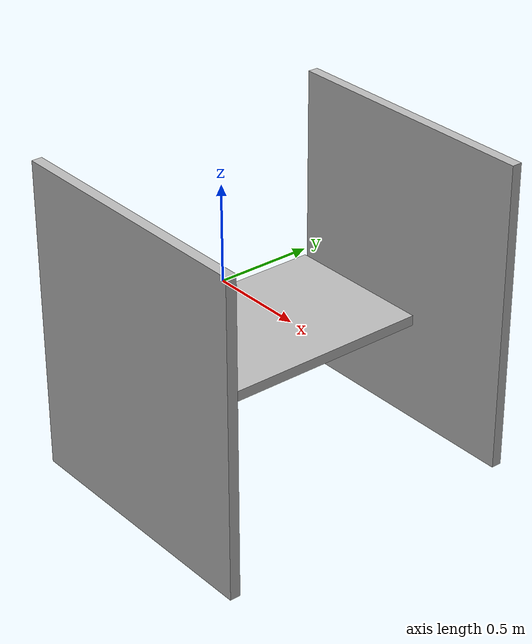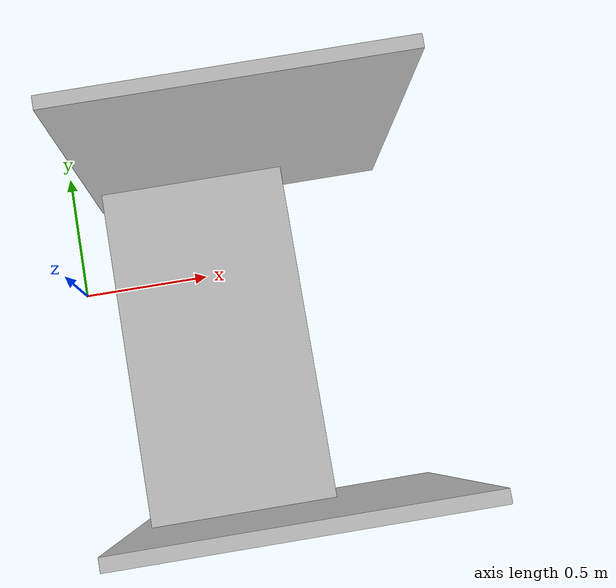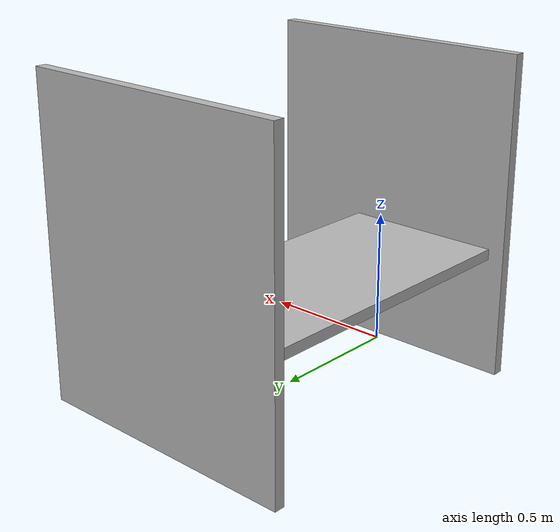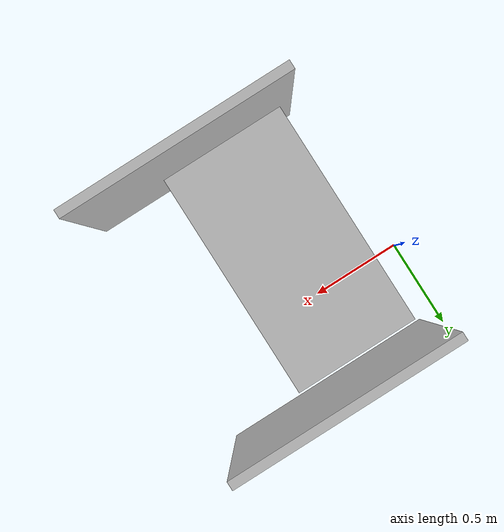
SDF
<?xml version="1.0" ?>
<sdf version="1.4">
  <!-- We use a custom world for the panda + softhand. -->
  <!-- One can change this world to his needs or use another one. -->

  <world name="default">

	<!-- box (like a robot base) -->

	<!-- box (like a table) -->
    <model name="table">
			<pose> 0.5 -0.3 0.03 0 0 0</pose>
			<static>true</static>
			<link name='linkTable'>
				<pose>0 0 0 0 0 0</pose>

				<collision name="my_collisionTable">
		 			<pose>0 0 0 0 0 0</pose>
					<geometry>
		        <box>
		          <size>0.75 1.45 0.05</size>
		        </box>
		      </geometry>
	      </collision>

				<visual name="my_visualTable">
					<geometry>
		        <box>
					<size>0.75 1.4 0.05</size>
		        </box>
		      </geometry>
	      </visual>

				<self_collide>0</self_collide>
				<gravity>1</gravity>
			</link>
    </model>

	<model name="camera1-2">
			<pose> 0.7 -1 0.2 0 0 0</pose>
			<static>true</static>
			<link name='linkTable'>
				<pose>0 0 0 0 0 0</pose>

				<collision name="my_collisionTable">
		 			<pose>0 0 0 0 0 0</pose>
					<geometry>
		        <box>
		          <size>1.3 0.05 1.5</size>
		        </box>
		      </geometry>
	      </collision>

				<visual name="my_visualTable">
					<geometry>
		        <box>
					<size>1.3 0.05 1.5</size>
		        </box>
		      </geometry>
	      </visual>

				<self_collide>0</self_collide>
				<gravity>1</gravity>
			</link>
    </model>

	<model name="camera3-4">
			<pose> 0.7 0.5 0.2 0 0 0</pose>
			<static>true</static>
			<link name='linkTable'>
				<pose>0 0 0 0 0 0</pose>

				<collision name="my_collisionTable">
		 			<pose>0 0 0 0 0 0</pose>
					<geometry>
		        <box>
		          <size>1.3 0.05 1.5</size>
		        </box>
		      </geometry>
	      </collision>

				<visual name="my_visualTable">
					<geometry>
		        <box>
					<size>1.3 0.05 1.5</size>
		        </box>
		      </geometry>
	      </visual>

				<self_collide>0</self_collide>
				<gravity>1</gravity>
			</link>
    </model>

  </world>

</sdf>
